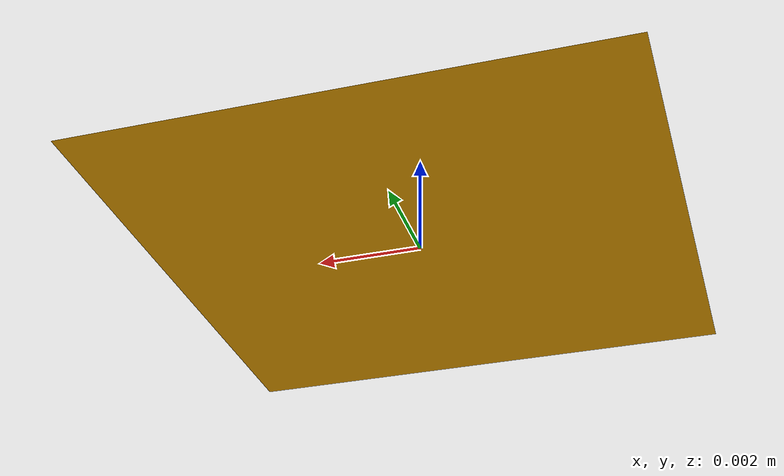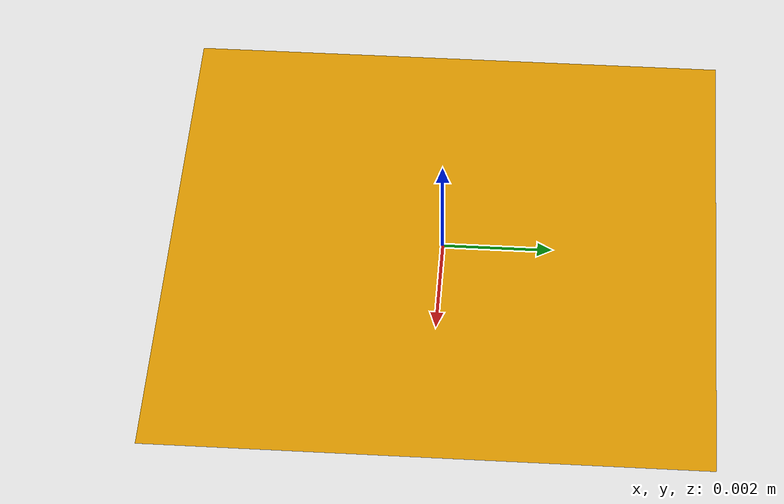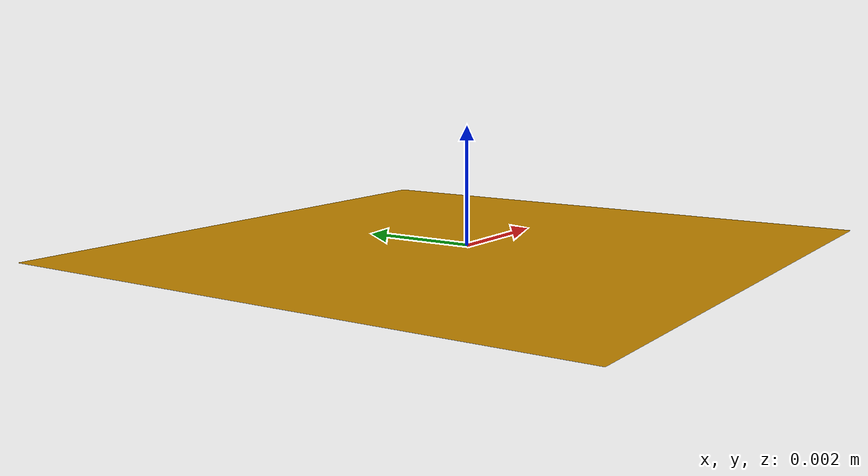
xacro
<?xml version="1.0"?>
<robot xmlns:xacro="http://www.ros.org/wiki/xacro">

  <!--    Parameters     -->

  <xacro:property name="PI" value="3.1415926535897932" />
  <xacro:arg name="prefix" default=""/>

  <!--      Colors       -->

  <material name="black"><color rgba="0.35 0.35 0.35 1.0" /></material>
  <material name="dark_grey"><color rgba="0.2 0.2 0.2 1.0" /></material>
  <material name="light_grey"><color rgba="0.4 0.4 0.4 1.0" /></material>
  <material name="white"><color rgba="1 1 1 1" /></material>
  <material name="blue"><color rgba="0 0 0.5 0.95" /></material>
  <material name="green"><color rgba="0 0.6 0.4 0.96" /></material>

  <!--      Inertia      -->

  <xacro:macro name="box_inertia" params="m:=1.0 x:=1.0 y:=1.0 z:=1.0">
    <inertia ixx="${m*(y*y+z*z)/12}" ixy="0" ixz="0"
             iyy="${m*(x*x+z*z)/12}" iyz="0"
             izz="${m*(x*x+y*y)/12}" />
  </xacro:macro>

  <xacro:macro name="wheel_inertia" params="m:=1.0 r:=0.1 h:=0.1">
    <inertia ixx="${m*(3*r*r+h*h)/12}" ixy="0" ixz="0"
             iyy="${m*r*r/2}" iyz="0"
             izz="${m*(3*r*r+h*h)/12}" />
  </xacro:macro>

  <xacro:macro name="solid_sphere_inertia" params="m:=1.0 r:=0.1">
    <inertia ixx="${(2*r*r*m)/5}" ixy="0" ixz="0"
             iyy="${(2*r*r*m)/5}" iyz="0"
             izz="${(2*r*r*m)/5}" />
  </xacro:macro>

  <xacro:macro name="ellipsoid_semi_axes_inertia" params="a:=1.0 b:=1.0 c:=1.0 m:=1.0">
    <inertia ixx="${(m*(b*b+c*c))/5}" ixy="0" ixz="0"
             iyy="${(m*(a*a+c*c))/5}" iyz="0"
             izz="${(m*(a*a+b*b))/5}" />
  </xacro:macro>

  <xacro:macro name="right_circular_cone_inertia" params="m:=1.0 r:=0.1 h:=0.1">
    <inertia ixx="${((3*m*(h*h))/5)+((3*m*(r*r))/20)}" ixy="0" ixz="0"
             iyy="${((3*m*(h*h))/5)+((3*m*(r*r))/20)}" iyz="0"
             izz="${(3*m*(r*r))/10}" />
  </xacro:macro>

  <xacro:macro name="solid_cuboid_inertia" params="m:=1.0 h:=1.0 d:=1.0 w:=1.0">
    <inertia ixx="${(m*(h*h+d*d))/12}" ixy="0" ixz="0"
             iyy="${(m*(w*w+d*d))/12}" iyz="0"
             izz="${(m*(w*w+h*h))/12}" />
  </xacro:macro>

  <xacro:macro name="solid_cylinder_inertia" params="m:=1.0 r:=0.1 h:=0.1">
    <inertia ixx="${m*(3*r*r+h*h)/12}" ixy="0" ixz="0"
             iyy="${m*(3*r*r+h*h)/12}" iyz="0"
             izz="${m*r*r/2}" />
  </xacro:macro>

  <xacro:macro name="thick_walled_cylinder_inertia" params="m:=1.0 r1:=0.1 r2:=0.2 h:=0.1">
    <inertia ixx="${m*((3*(r1*r1+r2*r2))+(h*h))/12}" ixy="0" ixz="0"
             iyy="${m*((3*(r1*r1+r2*r2))+(h*h))/12}" iyz="0"
             izz="${m*(r1*r1+r2*r2)/2}" />
  </xacro:macro>

  <!--  Base Footprint   -->

  <link name="base_footprint">
    <visual>
      <origin xyz="0 0 0" rpy="0 0 0" />
      <geometry>
        <box size="0.01 0.01 0" />
      </geometry>
    </visual>
    <collision>
      <origin xyz="0 0 0" rpy="0 0 0" />
      <geometry>
        <box size="0.01 0.01 0" />
      </geometry>
    </collision>
    <inertial>
      <mass value="0.1" />
      <inertia ixx="0.0001" ixy="0" ixz="0"
               iyy="0.0001" iyz="0"
               izz="0.0001" />
    </inertial>
  </link>

</robot>
